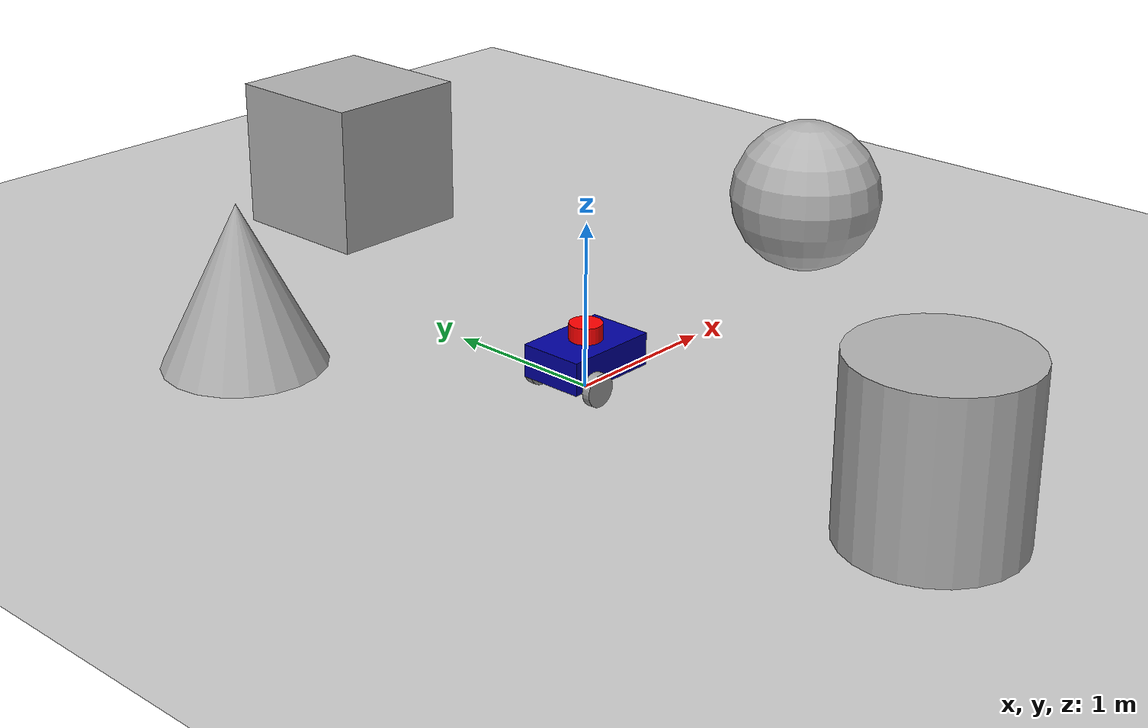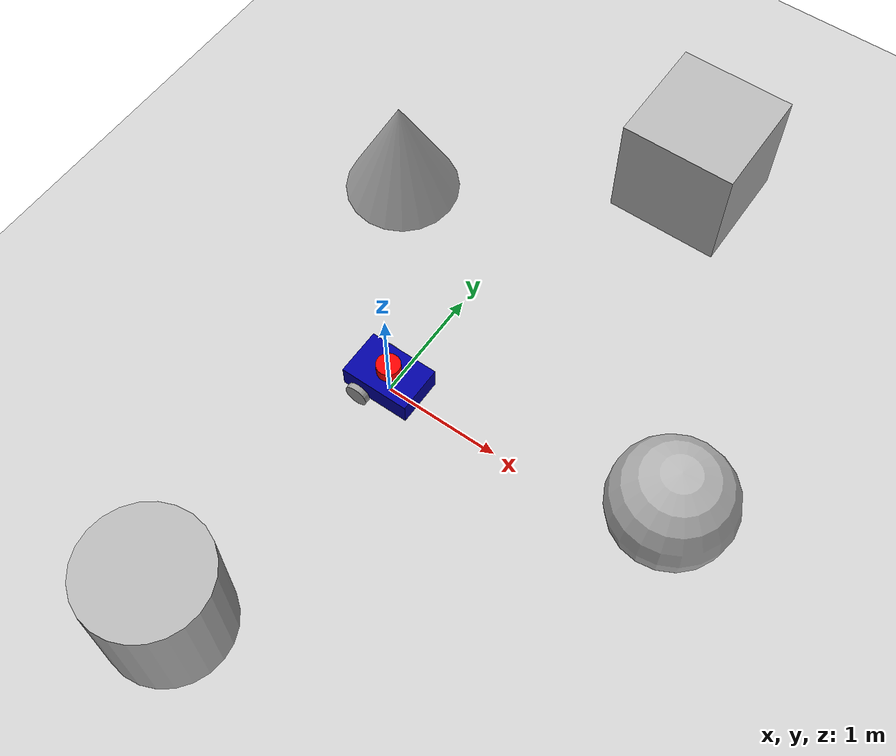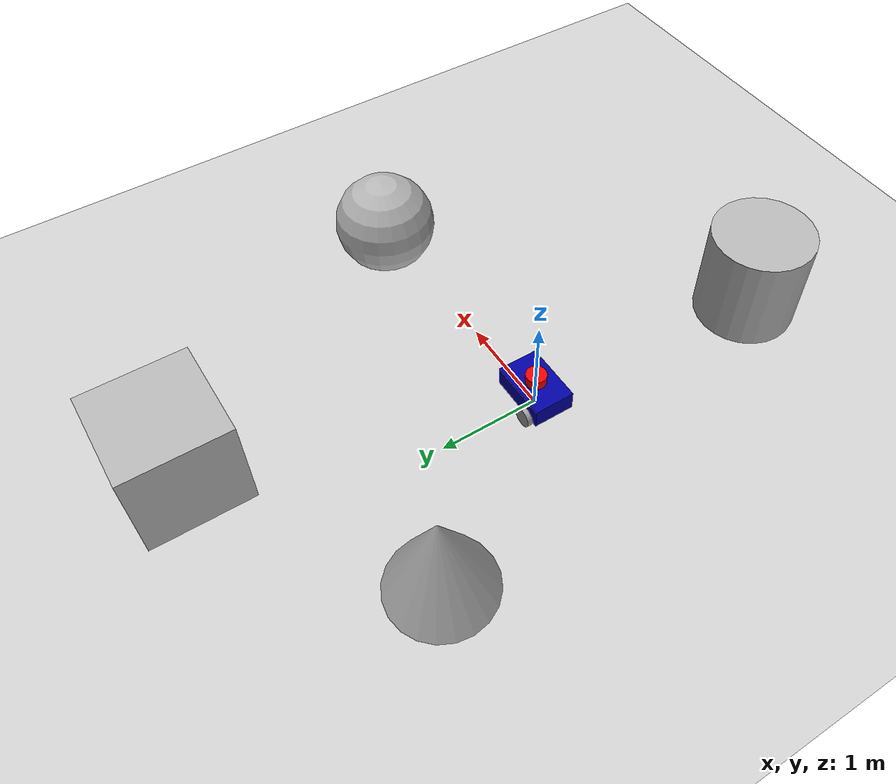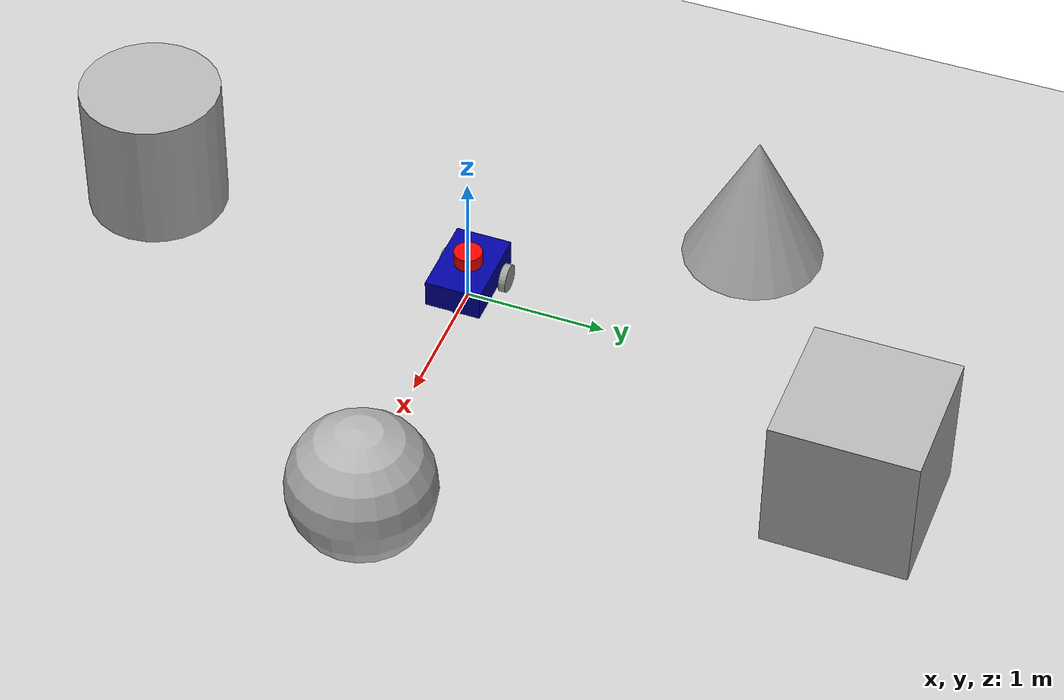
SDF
<sdf version='1.10'>
  <world name='empty'>
    <physics name='1ms' type='ignored'>
      <max_step_size>0.001</max_step_size>
      <real_time_factor>1</real_time_factor>
      <real_time_update_rate>1000</real_time_update_rate>
    </physics>
    <plugin name='gz::sim::systems::Physics' filename='gz-sim-physics-system'/>
    <plugin name='gz::sim::systems::UserCommands' filename='gz-sim-user-commands-system'/>
    <plugin name='gz::sim::systems::SceneBroadcaster' filename='gz-sim-scene-broadcaster-system'/>
    <plugin name='gz::sim::systems::Contact' filename='gz-sim-contact-system'/>
    <gravity>0 0 -9.8000000000000007</gravity>
    <magnetic_field>5.5644999999999998e-06 2.2875799999999999e-05 -4.2388400000000002e-05</magnetic_field>
    <atmosphere type='adiabatic'/>
    <scene>
      <ambient>0.400000006 0.400000006 0.400000006 1</ambient>
      <background>0.699999988 0.699999988 0.699999988 1</background>
      <shadows>true</shadows>
    </scene>
    <model name='ground_plane'>
      <static>true</static>
      <link name='link'>
        <collision name='collision'>
          <geometry>
            <plane>
              <normal>0 0 1</normal>
              <size>100 100</size>
            </plane>
          </geometry>
          <surface>
            <friction>
              <ode/>
            </friction>
            <bounce/>
            <contact/>
          </surface>
        </collision>
        <visual name='visual'>
          <geometry>
            <plane>
              <normal>0 0 1</normal>
              <size>100 100</size>
            </plane>
          </geometry>
          <material>
            <ambient>0.800000012 0.800000012 0.800000012 1</ambient>
            <diffuse>0.800000012 0.800000012 0.800000012 1</diffuse>
            <specular>0.800000012 0.800000012 0.800000012 1</specular>
          </material>
        </visual>
        <pose>0 0 0 0 0 0</pose>
        <inertial>
          <pose>0 0 0 0 0 0</pose>
          <mass>1</mass>
          <inertia>
            <ixx>1</ixx>
            <ixy>0</ixy>
            <ixz>0</ixz>
            <iyy>1</iyy>
            <iyz>0</iyz>
            <izz>1</izz>
          </inertia>
        </inertial>
        <enable_wind>false</enable_wind>
      </link>
      <pose>0 0 0 0 0 0</pose>
      <self_collide>false</self_collide>
    </model>
    <model name='my_robot'>
      <link name='base_footprint'>
        <inertial>
          <pose>0.01785714285714286 0 0.18928571428571431 0 0 0</pose>
          <mass>5.5999999999999996</mass>
          <inertia>
            <ixx>0.097023809523809651</ixx>
            <ixy>0</ixy>
            <ixz>0.013928571428571431</ixz>
            <iyy>0.19857142857142859</iyy>
            <iyz>0</iyz>
            <izz>0.23588095238095241</izz>
          </inertia>
        </inertial>
        <collision name='base_footprint_fixed_joint_lump__base_link_collision'>
          <pose>0 0 0.20000000000000001 0 0 0</pose>
          <geometry>
            <box>
              <size>0.59999999999999998 0.40000000000000002 0.20000000000000001</size>
            </box>
          </geometry>
          <surface>
            <friction>
              <ode/>
            </friction>
            <bounce/>
            <contact/>
          </surface>
        </collision>
        <collision name='base_footprint_fixed_joint_lump__caster_wheel_link_collision_1'>
          <pose>0.20000000000000001 0 0.050000000000000003 0 0 0</pose>
          <geometry>
            <sphere>
              <radius>0.050000000000000003</radius>
            </sphere>
          </geometry>
          <surface>
            <contact>
              <ode/>
            </contact>
            <friction>
              <ode>
                <mu>0.10000000000000001</mu>
                <mu2>0.10000000000000001</mu2>
              </ode>
            </friction>
            <bounce/>
          </surface>
        </collision>
        <collision name='base_footprint_fixed_joint_lump__lidar_link_collision_2'>
          <pose>0 0 0.34999999999999998 0 0 0</pose>
          <geometry>
            <cylinder>
              <length>0.10000000000000001</length>
              <radius>0.10000000000000001</radius>
            </cylinder>
          </geometry>
          <surface>
            <contact>
              <ode/>
            </contact>
            <friction>
              <ode/>
            </friction>
            <bounce/>
          </surface>
        </collision>
        <visual name='base_footprint_fixed_joint_lump__base_link_visual'>
          <pose>0 0 0.20000000000000001 0 0 0</pose>
          <geometry>
            <box>
              <size>0.59999999999999998 0.40000000000000002 0.20000000000000001</size>
            </box>
          </geometry>
          <material>
            <diffuse>0 0 0.625 1</diffuse>
            <ambient>0 0 0.625 1</ambient>
          </material>
        </visual>
        <visual name='base_footprint_fixed_joint_lump__caster_wheel_link_visual_1'>
          <pose>0.20000000000000001 0 0.050000000000000003 0 0 0</pose>
          <geometry>
            <sphere>
              <radius>0.050000000000000003</radius>
            </sphere>
          </geometry>
          <material>
            <diffuse>0.625 0.625 0.625 1</diffuse>
            <ambient>0.625 0.625 0.625 1</ambient>
          </material>
        </visual>
        <visual name='base_footprint_fixed_joint_lump__lidar_link_visual_2'>
          <pose>0 0 0.34999999999999998 0 0 0</pose>
          <geometry>
            <cylinder>
              <length>0.10000000000000001</length>
              <radius>0.10000000000000001</radius>
            </cylinder>
          </geometry>
          <material>
            <diffuse>1 0 0 1</diffuse>
            <ambient>1 0 0 1</ambient>
          </material>
        </visual>
        <sensor name='gpu_lidar' type='gpu_lidar'>
          <pose>0 0 0.34999999999999998 0 0 0</pose>
          <topic>scan</topic>
          <update_rate>2</update_rate>
          <enable_metrics>false</enable_metrics>
          <lidar>
            <scan>
              <horizontal>
                <samples>720</samples>
                <resolution>1</resolution>
                <min_angle>-3.1400000000000001</min_angle>
                <max_angle>3.1400000000000001</max_angle>
              </horizontal>
              <vertical>
                <samples>1</samples>
                <min_angle>0</min_angle>
                <max_angle>0</max_angle>
                <resolution>1</resolution>
              </vertical>
            </scan>
            <range>
              <min>0.01</min>
              <max>12</max>
              <resolution>0.0050000000000000001</resolution>
            </range>
            <noise>
              <type>gaussian</type>
              <mean>0</mean>
              <stddev>0.001</stddev>
            </noise>
            <visibility_mask>4294967295</visibility_mask>
          </lidar>
        </sensor>
        <pose>0 0 0 0 0 0</pose>
        <enable_wind>false</enable_wind>
      </link>
      <joint name='base_left_wheel_joint' type='revolute'>
        <pose>0 0 0 0 0 0</pose>
        <parent>base_footprint</parent>
        <child>left_wheel_link</child>
        <axis>
          <xyz>0 1 0</xyz>
          <limit>
            <lower>-inf</lower>
            <upper>inf</upper>
            <effort>inf</effort>
            <velocity>inf</velocity>
            <stiffness>100000000</stiffness>
            <dissipation>1</dissipation>
          </limit>
          <dynamics>
            <spring_reference>0</spring_reference>
            <spring_stiffness>0</spring_stiffness>
            <damping>0</damping>
            <friction>0</friction>
          </dynamics>
        </axis>
      </joint>
      <link name='left_wheel_link'>
        <pose>-0.14999999999999999 0.22500000000000001 0.099999999999999992 -1.8449430334025024e-38 1.863984246600538e-15 -1.7194723750688375e-53</pose>
        <inertial>
          <pose>0 0 0 1.5707963267948959 0 0</pose>
          <mass>1</mass>
          <inertia>
            <ixx>0.0027083333333333339</ixx>
            <ixy>0</ixy>
            <ixz>0</ixz>
            <iyy>0.0027083333333333339</iyy>
            <iyz>0</iyz>
            <izz>0.005000000000000001</izz>
          </inertia>
        </inertial>
        <collision name='left_wheel_link_collision'>
          <pose>0 0 0 0 0 0</pose>
          <geometry>
            <sphere>
              <radius>0.10000000000000001</radius>
            </sphere>
          </geometry>
          <surface>
            <friction>
              <ode/>
            </friction>
            <bounce/>
            <contact/>
          </surface>
        </collision>
        <visual name='left_wheel_link_visual'>
          <pose>0 0 0 1.5707963267948959 0 0</pose>
          <geometry>
            <cylinder>
              <length>0.050000000000000003</length>
              <radius>0.10000000000000001</radius>
            </cylinder>
          </geometry>
          <material>
            <diffuse>0.625 0.625 0.625 1</diffuse>
            <ambient>0.625 0.625 0.625 1</ambient>
          </material>
        </visual>
        <enable_wind>false</enable_wind>
      </link>
      <joint name='base_right_wheel_joint' type='revolute'>
        <pose>0 0 0 0 0 0</pose>
        <parent>base_footprint</parent>
        <child>right_wheel_link</child>
        <axis>
          <xyz>0 1 0</xyz>
          <limit>
            <lower>-inf</lower>
            <upper>inf</upper>
            <effort>inf</effort>
            <velocity>inf</velocity>
            <stiffness>100000000</stiffness>
            <dissipation>1</dissipation>
          </limit>
          <dynamics>
            <spring_reference>0</spring_reference>
            <spring_stiffness>0</spring_stiffness>
            <damping>0</damping>
            <friction>0</friction>
          </dynamics>
        </axis>
      </joint>
      <link name='right_wheel_link'>
        <pose>-0.14999999999999999 -0.22500000000000001 0.099999999999999992 -1.8449497900832668e-38 1.8639835041348524e-15 -1.7194779873361339e-53</pose>
        <inertial>
          <pose>0 0 0 1.5707963267948959 0 0</pose>
          <mass>1</mass>
          <inertia>
            <ixx>0.0027083333333333339</ixx>
            <ixy>0</ixy>
            <ixz>0</ixz>
            <iyy>0.0027083333333333339</iyy>
            <iyz>0</iyz>
            <izz>0.005000000000000001</izz>
          </inertia>
        </inertial>
        <collision name='right_wheel_link_collision'>
          <pose>0 0 0 0 0 0</pose>
          <geometry>
            <sphere>
              <radius>0.10000000000000001</radius>
            </sphere>
          </geometry>
          <surface>
            <friction>
              <ode/>
            </friction>
            <bounce/>
            <contact/>
          </surface>
        </collision>
        <visual name='right_wheel_link_visual'>
          <pose>0 0 0 1.5707963267948959 0 0</pose>
          <geometry>
            <cylinder>
              <length>0.050000000000000003</length>
              <radius>0.10000000000000001</radius>
            </cylinder>
          </geometry>
          <material>
            <diffuse>0.625 0.625 0.625 1</diffuse>
            <ambient>0.625 0.625 0.625 1</ambient>
          </material>
        </visual>
        <enable_wind>false</enable_wind>
      </link>
      <plugin name='gz::sim::systems::DiffDrive' filename='gz-sim-diff-drive-system'>
        <left_joint>base_left_wheel_joint</left_joint>
        <right_joint>base_right_wheel_joint</right_joint>
        <wheel_separation>0.45</wheel_separation>
        <wheel_radius>0.1</wheel_radius>
        <frame_id>odom</frame_id>
        <child_frame_id>base_footprint</child_frame_id>
      </plugin>
      <plugin name='gz::sim::systems::JointStatePublisher' filename='gz-sim-joint-state-publisher-system'>
        <joint_name>base_left_wheel_joint</joint_name>
        <joint_name>base_right_wheel_joint</joint_name>
      </plugin>
      <plugin name='gz::sim::systems::Sensors' filename='gz-sim-sensors-system'>
        <render_engine>ogre2</render_engine>
      </plugin>
      <frame name='base_caster_wheel_joint' attached_to='base_link'>
        <pose>0.20000000000000001 0 -0.050000000000000003 0 0 0</pose>
      </frame>
      <frame name='caster_wheel_link' attached_to='base_caster_wheel_joint'>
        <pose>0 0 0 0 0 0</pose>
      </frame>
      <frame name='laser_joint' attached_to='base_link'>
        <pose>0 0 0.25 0 0 0</pose>
      </frame>
      <frame name='lidar_link' attached_to='laser_joint'>
        <pose>0 0 0 0 0 0</pose>
      </frame>
      <frame name='base_joint' attached_to='base_footprint'>
        <pose>0 0 0.10000000000000001 0 0 0</pose>
      </frame>
      <frame name='base_link' attached_to='base_joint'>
        <pose>0 0 0 0 0 0</pose>
      </frame>
      <pose>1.3824509592641478e-16 -3.1527812907799656e-22 -9.66049827477028e-11 1.0971589275272564e-21 -4.2228893779375221e-11 1.8200761735406916e-22</pose>
      <static>false</static>
      <self_collide>false</self_collide>
    </model>
    <model name='sphere'>
      <pose>2.3899406051344823 0.21506505314569693 0.499999999902001 0 0 0</pose>
      <link name='sphere_link'>
        <inertial>
          <inertia>
            <ixx>0.10000000000000001</ixx>
            <ixy>0</ixy>
            <ixz>0</ixz>
            <iyy>0.10000000000000001</iyy>
            <iyz>0</iyz>
            <izz>0.10000000000000001</izz>
          </inertia>
          <mass>1</mass>
          <pose>0 0 0 0 0 0</pose>
        </inertial>
        <collision name='sphere_collision'>
          <geometry>
            <sphere>
              <radius>0.5</radius>
            </sphere>
          </geometry>
          <surface>
            <friction>
              <ode/>
            </friction>
            <bounce/>
            <contact/>
          </surface>
        </collision>
        <visual name='sphere_visual'>
          <geometry>
            <sphere>
              <radius>0.5</radius>
            </sphere>
          </geometry>
          <material>
            <ambient>0.300000012 0.300000012 0.300000012 1</ambient>
            <diffuse>0.699999988 0.699999988 0.699999988 1</diffuse>
            <specular>1 1 1 1</specular>
          </material>
        </visual>
        <pose>0 0 0 0 0 0</pose>
        <enable_wind>false</enable_wind>
      </link>
      <static>false</static>
      <self_collide>false</self_collide>
    </model>
    <model name='box'>
      <pose>0.96101051790478387 3.0934815292030007 0.49999999990199806 6.2287739151293738e-22 9.3279666454713669e-22 -3.6315533669320137e-22</pose>
      <link name='box_link'>
        <inertial>
          <inertia>
            <ixx>0.16666</ixx>
            <ixy>0</ixy>
            <ixz>0</ixz>
            <iyy>0.16666</iyy>
            <iyz>0</iyz>
            <izz>0.16666</izz>
          </inertia>
          <mass>1</mass>
          <pose>0 0 0 0 0 0</pose>
        </inertial>
        <collision name='box_collision'>
          <geometry>
            <box>
              <size>1 1 1</size>
            </box>
          </geometry>
          <surface>
            <friction>
              <ode/>
            </friction>
            <bounce/>
            <contact/>
          </surface>
        </collision>
        <visual name='box_visual'>
          <geometry>
            <box>
              <size>1 1 1</size>
            </box>
          </geometry>
          <material>
            <ambient>0.300000012 0.300000012 0.300000012 1</ambient>
            <diffuse>0.699999988 0.699999988 0.699999988 1</diffuse>
            <specular>1 1 1 1</specular>
          </material>
        </visual>
        <pose>0 0 0 0 0 0</pose>
        <enable_wind>false</enable_wind>
      </link>
      <static>false</static>
      <self_collide>false</self_collide>
    </model>
    <model name='cylinder'>
      <pose>-0.15574550892134642 -2.4490957105495745 0.49999942638036005 3.1933137519272363e-20 1.0168291615426776e-19 1.5769117218365828e-21</pose>
      <link name='cylinder_link'>
        <inertial>
          <inertia>
            <ixx>0.14580000000000001</ixx>
            <ixy>0</ixy>
            <ixz>0</ixz>
            <iyy>0.14580000000000001</iyy>
            <iyz>0</iyz>
            <izz>0.125</izz>
          </inertia>
          <mass>1</mass>
          <pose>0 0 0 0 0 0</pose>
        </inertial>
        <collision name='cylinder_collision'>
          <geometry>
            <cylinder>
              <radius>0.5</radius>
              <length>1</length>
            </cylinder>
          </geometry>
          <surface>
            <friction>
              <ode/>
            </friction>
            <bounce/>
            <contact/>
          </surface>
        </collision>
        <visual name='cylinder_visual'>
          <geometry>
            <cylinder>
              <radius>0.5</radius>
              <length>1</length>
            </cylinder>
          </geometry>
          <material>
            <ambient>0.300000012 0.300000012 0.300000012 1</ambient>
            <diffuse>0.699999988 0.699999988 0.699999988 1</diffuse>
            <specular>1 1 1 1</specular>
          </material>
        </visual>
        <pose>0 0 0 0 0 0</pose>
        <enable_wind>false</enable_wind>
      </link>
      <static>false</static>
      <self_collide>false</self_collide>
    </model>
    <model name='cone'>
      <pose>-1.1318177106358935 1.7040653362394451 0.49999999993296756 5.2539673238603227e-17 -7.7132841034849224e-10 -2.2042306062451038e-22</pose>
      <link name='cone_link'>
        <inertial>
          <inertia>
            <ixx>0.074999999999999997</ixx>
            <ixy>0</ixy>
            <ixz>0</ixz>
            <iyy>0.074999999999999997</iyy>
            <iyz>0</iyz>
            <izz>0.074999999999999997</izz>
          </inertia>
          <mass>1</mass>
          <pose>0 0 0 0 0 0</pose>
        </inertial>
        <collision name='cone_collision'>
          <geometry>
            <cone>
              <radius>0.5</radius>
              <length>1</length>
            </cone>
          </geometry>
          <surface>
            <friction>
              <ode/>
            </friction>
            <bounce/>
            <contact/>
          </surface>
        </collision>
        <visual name='cone_visual'>
          <geometry>
            <cone>
              <radius>0.5</radius>
              <length>1</length>
            </cone>
          </geometry>
          <material>
            <ambient>0.300000012 0.300000012 0.300000012 1</ambient>
            <diffuse>0.699999988 0.699999988 0.699999988 1</diffuse>
            <specular>1 1 1 1</specular>
          </material>
        </visual>
        <pose>0 0 0 0 0 0</pose>
        <enable_wind>false</enable_wind>
      </link>
      <static>false</static>
      <self_collide>false</self_collide>
    </model>
    <light name='sun' type='directional'>
      <pose>0 0 10 0 0 0</pose>
      <cast_shadows>true</cast_shadows>
      <intensity>1</intensity>
      <direction>-0.5 0.10000000000000001 -0.90000000000000002</direction>
      <diffuse>0.800000012 0.800000012 0.800000012 1</diffuse>
      <specular>0.200000003 0.200000003 0.200000003 1</specular>
      <attenuation>
        <range>1000</range>
        <linear>0.01</linear>
        <constant>0.90000000000000002</constant>
        <quadratic>0.001</quadratic>
      </attenuation>
      <spot>
        <inner_angle>0</inner_angle>
        <outer_angle>0</outer_angle>
        <falloff>0</falloff>
      </spot>
    </light>
  </world>
</sdf>
